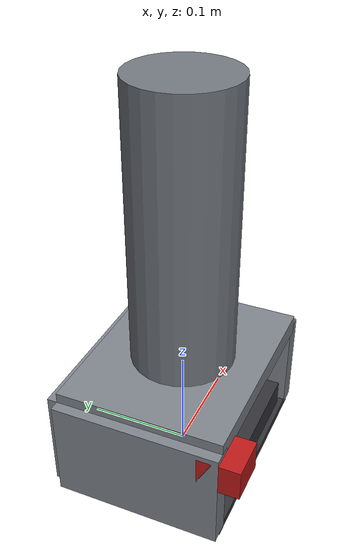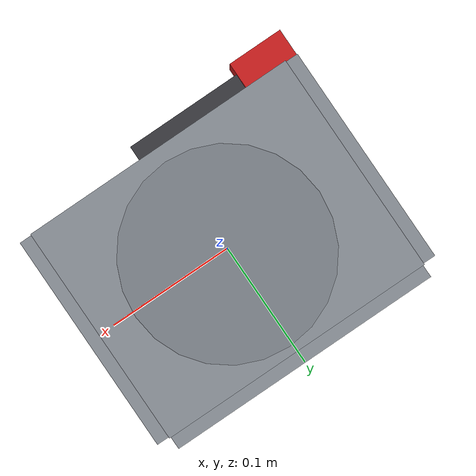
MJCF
<?xml version="1.0" encoding="utf-8"?>
<mujoco model="real_lab_vanderbilt_university_esem">
  <compiler angle="radian" autolimits="true"/>
  <default>
    <default class="body"><geom contype="1" conaffinity="1"/></default>
  </default>
  <worldbody>
    <body name="base">
      <geom type="box" size="0.1 0.01 0.05" pos="0 0.08 0.05" rgba="0.5 0.52 0.55 1" class="body"/>
      <geom type="box" size="0.01 0.08 0.05" pos="-0.1 0 0.05" rgba="0.5 0.52 0.55 1" class="body"/>
      <geom type="box" size="0.01 0.08 0.05" pos="0.1 0 0.05" rgba="0.5 0.52 0.55 1" class="body"/>
      <geom type="box" size="0.1 0.08 0.01" pos="0 0 0.1" rgba="0.5 0.52 0.55 1" class="body"/>
      <geom type="box" size="0.1 0.08 0.004" pos="0 0 0.002" rgba="0.2 0.2 0.22 1" class="body"/>
      <geom type="cylinder" size="0.05 0.14" pos="0.0 0.0 0.24" rgba="0.45 0.47 0.5 1" class="body"/>
      <body name="edx_detector_arm" pos="0.0 -0.08 0.08">
        <joint name="edx_detector_arm_joint" type="hinge" axis="0 0 1" range="0 1.2" damping="0.5" frictionloss="0.2"/>
  <geom type="box" size="0.06 0.012 0.012" pos="-0.045 0 0" rgba="0.2 0.2 0.22 1" class="body"/>
  <geom type="box" size="0.02 0.02 0.015" pos="-0.09 0 0" rgba="0.75 0.1 0.1 1" class="body"/>
      </body>
    </body>
  </worldbody>
</mujoco>
